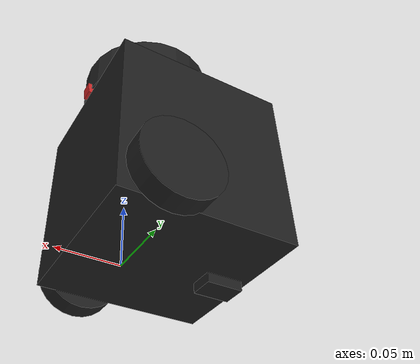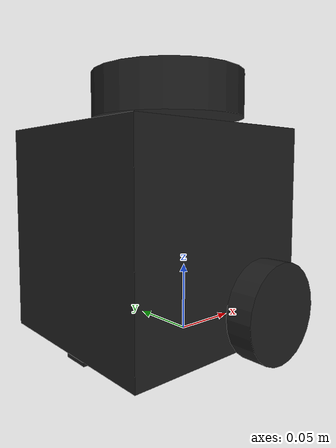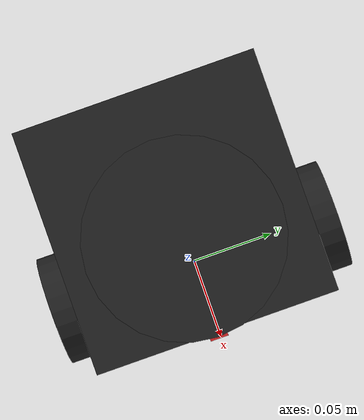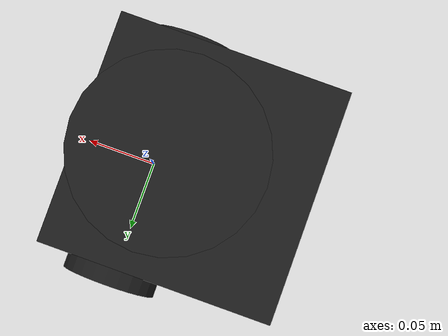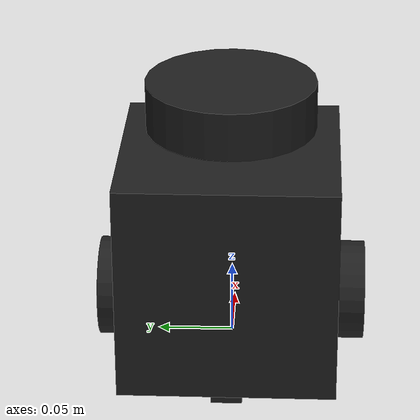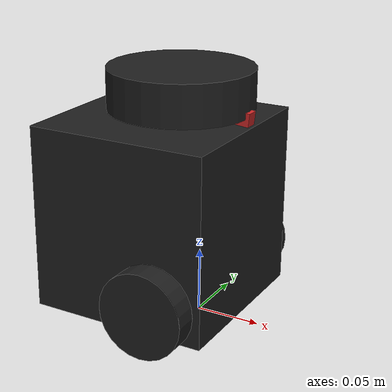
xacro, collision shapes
<?xml version="1.0" ?>
<robot name="turtlebot3_burger" xmlns:xacro="http://ros.org/wiki/xacro">
  <xacro:include filename="$(find turtlebot3_description)/urdf/common_properties.xacro"/>
  <xacro:include filename="$(find turtlebot3_description)/urdf/turtlebot3_burger.gazebo.xacro"/>

  <link name="base_footprint"/>

  <joint name="base_joint" type="fixed">
    <parent link="base_footprint"/>
    <child link="base_link"/>
    <origin xyz="0.0 0.0 0.010" rpy="0 0 0"/>
  </joint>

  <link name="base_link">
    <visual>
      <origin xyz="-0.032 0 0.0" rpy="0 0 0"/>
      <geometry>
        <mesh filename="package://turtlebot3_description/meshes/bases/burger_base.stl" scale="0.001 0.001 0.001"/>
      </geometry>
      <material name="light_black"/>
    </visual>

    <collision>
      <origin xyz="-0.032 0 0.070" rpy="0 0 0"/>
      <geometry>
        <box size="0.140 0.140 0.143"/>
      </geometry>
    </collision>

    <inertial>
      <origin xyz="0 0 0" rpy="0 0 0"/>
      <mass value="8.2573504e-01"/>
      <inertia ixx="2.2124416e-03" ixy="-1.2294101e-05" ixz="3.4938785e-05"
               iyy="2.1193702e-03" iyz="-5.0120904e-06"
               izz="2.0064271e-03" />
    </inertial>
  </link>

  <joint name="wheel_left_joint" type="continuous">
    <parent link="base_link"/>
    <child link="wheel_left_link"/>
    <origin xyz="0.0 0.08 0.023" rpy="-1.57 0 0"/>
    <axis xyz="0 0 1"/>
  </joint>

  <link name="wheel_left_link">
    <visual>
      <origin xyz="0 0 0" rpy="1.57 0 0"/>
      <geometry>
        <mesh filename="package://turtlebot3_description/meshes/wheels/left_tire.stl" scale="0.001 0.001 0.001"/>
      </geometry>
      <material name="dark"/>
    </visual>

    <collision>
      <origin xyz="0 0 0" rpy="0 0 0"/>
      <geometry>
        <cylinder length="0.018" radius="0.033"/>
      </geometry>
    </collision>

    <inertial>
      <origin xyz="0 0 0" />
      <mass value="2.8498940e-02" />
      <inertia ixx="1.1175580e-05" ixy="-4.2369783e-11" ixz="-5.9381719e-09"
               iyy="1.1192413e-05" iyz="-1.4400107e-11"
               izz="2.0712558e-05" />
      </inertial>
  </link>

  <joint name="wheel_right_joint" type="continuous">
    <parent link="base_link"/>
    <child link="wheel_right_link"/>
    <origin xyz="0.0 -0.080 0.023" rpy="-1.57 0 0"/>
    <axis xyz="0 0 1"/>
  </joint>

  <link name="wheel_right_link">
    <visual>
      <origin xyz="0 0 0" rpy="1.57 0 0"/>
      <geometry>
        <mesh filename="package://turtlebot3_description/meshes/wheels/right_tire.stl" scale="0.001 0.001 0.001"/>
      </geometry>
      <material name="dark"/>
    </visual>

    <collision>
      <origin xyz="0 0 0" rpy="0 0 0"/>
      <geometry>
        <cylinder length="0.018" radius="0.033"/>
      </geometry>
    </collision>

    <inertial>
      <origin xyz="0 0 0" />
      <mass value="2.8498940e-02" />
      <inertia ixx="1.1175580e-05" ixy="-4.2369783e-11" ixz="-5.9381719e-09"
               iyy="1.1192413e-05" iyz="-1.4400107e-11"
               izz="2.0712558e-05" />
      </inertial>
  </link>

  <joint name="caster_back_joint" type="fixed">
    <parent link="base_link"/>
    <child link="caster_back_link"/>
    <origin xyz="-0.081 0 -0.004" rpy="-1.57 0 0"/>
  </joint>

  <link name="caster_back_link">
    <collision>
      <origin xyz="0 0.001 0" rpy="0 0 0"/>
      <geometry>
        <box size="0.030 0.009 0.020"/>
      </geometry>
    </collision>

    <inertial>
      <origin xyz="0 0 0" />
      <mass value="0.005" />
      <inertia ixx="0.001" ixy="0.0" ixz="0.0"
               iyy="0.001" iyz="0.0"
               izz="0.001" />
    </inertial>
  </link>

  <joint name="imu_joint" type="fixed">
    <parent link="base_link"/>
    <child link="imu_link"/>
    <origin xyz="-0.032 0 0.068" rpy="0 0 0"/>
  </joint>

  <link name="imu_link"/>

  <joint name="scan_joint" type="fixed">
    <parent link="base_link"/>
    <child link="base_scan"/>
    <origin xyz="-0.032 0 0.172" rpy="0 0 0"/>
  </joint>

  <link name="base_scan">
    <visual>
      <origin xyz="0 0 0.0" rpy="0 0 0"/>
      <geometry>
        <mesh filename="package://turtlebot3_description/meshes/sensors/lds.stl" scale="0.001 0.001 0.001"/>
      </geometry>
      <material name="dark"/>
    </visual>

    <collision>
      <origin xyz="0.015 0 -0.0065" rpy="0 0 0"/>
      <geometry>
        <cylinder length="0.0315" radius="0.055"/>
      </geometry>
    </collision>

    <inertial>
      <mass value="0.114" />
      <origin xyz="0 0 0" />
      <inertia ixx="0.001" ixy="0.0" ixz="0.0"
               iyy="0.001" iyz="0.0"
               izz="0.001" />
    </inertial>
  </link>

    <!-- camera -->
    <joint name = "camera_joint" type = "fixed">
      <axis xyz = "0 1 0"/>
        <origin xyz = "0.035 0.0 0.15" rpy= "0 0.1 0"/>
        <parent link = "base_link"/>
        <child link = "camera_link"/>
  </joint>

  <link name = "camera_link">
    <collision>
      <origin xyz = "0 0 0" rpy = "0 0 0"/>
        <geometry>
          <box size = "${camera_link} ${camera_link} ${camera_link}"/>
        </geometry>
    </collision>

    <visual>
      <origin xyz = "0 0 0" rpy = "0 0 0"/>
        <geometry>
          <box size = "${camera_link} ${camera_link} ${camera_link}"/>
        </geometry>
        <material name = "red"/>
    </visual>

    <inertial>
      <mass value="1e-5" />
      <origin xyz = "0 0 0" rpy = "0 0 0"/>
      <inertia ixx = "1e-6" ixy = "0" ixz = "0" iyy = "1e-6" iyz = "0" izz = "1e-6" />
    </inertial>
  </link>

</robot>

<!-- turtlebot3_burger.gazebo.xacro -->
<robot name="turtlebot3_burger_sim" xmlns:xacro="http://ros.org/wiki/xacro">
  <xacro:arg name="laser_visual" default="false"/>
  <xacro:arg name="imu_visual"   default="false"/>

  <gazebo reference="base_link">
    <material>Gazebo/DarkGrey</material>
  </gazebo>

  <gazebo reference="wheel_left_link">
    <mu1>0.1</mu1>
    <mu2>0.1</mu2>
    <kp>500000.0</kp>
    <kd>10.0</kd>
    <minDepth>0.001</minDepth>
    <maxVel>0.1</maxVel>
    <fdir1>1 0 0</fdir1>
    <material>Gazebo/FlatBlack</material>
  </gazebo>

  <gazebo reference="wheel_right_link">
    <mu1>0.1</mu1>
    <mu2>0.1</mu2>
    <kp>500000.0</kp>
    <kd>10.0</kd>
    <minDepth>0.001</minDepth>
    <maxVel>0.1</maxVel>
    <fdir1>1 0 0</fdir1>
    <material>Gazebo/FlatBlack</material>
  </gazebo>

  <gazebo reference="caster_back_link">
    <mu1>0.1</mu1>
    <mu2>0.1</mu2>
    <kp>1000000.0</kp>
    <kd>100.0</kd>
    <minDepth>0.001</minDepth>
    <maxVel>1.0</maxVel>
    <material>Gazebo/FlatBlack</material>
  </gazebo>

  <gazebo reference="imu_link">
    <sensor type="imu" name="imu">
      <always_on>true</always_on>
      <visualize>$(arg imu_visual)</visualize>
    </sensor>
    <material>Gazebo/FlatBlack</material>
  </gazebo>

  <gazebo>
    <plugin name="turtlebot3_burger_controller" filename="libgazebo_ros_diff_drive.so">
      <commandTopic>cmd_vel</commandTopic>
      <odometryTopic>odom</odometryTopic>
      <odometryFrame>odom</odometryFrame>
      <odometrySource>world</odometrySource>
      <publishOdomTF>true</publishOdomTF>
      <robotBaseFrame>base_footprint</robotBaseFrame>
      <publishWheelTF>false</publishWheelTF>
      <publishTf>true</publishTf>
      <publishWheelJointState>true</publishWheelJointState>
      <legacyMode>false</legacyMode>
      <updateRate>30</updateRate>
      <leftJoint>wheel_left_joint</leftJoint>
      <rightJoint>wheel_right_joint</rightJoint>
      <wheelSeparation>0.160</wheelSeparation>
      <wheelDiameter>0.066</wheelDiameter>
      <wheelAcceleration>1</wheelAcceleration>
      <wheelTorque>10</wheelTorque>
      <rosDebugLevel>na</rosDebugLevel>
    </plugin>
  </gazebo>

  <gazebo>
    <plugin name="imu_plugin" filename="libgazebo_ros_imu.so">
      <alwaysOn>true</alwaysOn>
      <bodyName>imu_link</bodyName>
      <frameName>imu_link</frameName>
      <topicName>imu</topicName>
      <serviceName>imu_service</serviceName>
      <gaussianNoise>0.0</gaussianNoise>
      <updateRate>200</updateRate>
      <imu>
        <noise>
          <type>gaussian</type>
          <rate>
            <mean>0.0</mean>
            <stddev>2e-4</stddev>
            <bias_mean>0.0000075</bias_mean>
            <bias_stddev>0.0000008</bias_stddev>
          </rate>
          <accel>
            <mean>0.0</mean>
            <stddev>1.7e-2</stddev>
            <bias_mean>0.1</bias_mean>
            <bias_stddev>0.001</bias_stddev>
          </accel>
        </noise>
      </imu>
    </plugin>
  </gazebo>

  <gazebo reference="base_scan">
    <material>Gazebo/FlatBlack</material>
    <sensor type="ray" name="lds_lfcd_sensor">
      <pose>0 0 0 0 0 0</pose>
      <visualize>$(arg laser_visual)</visualize>
      <update_rate>5</update_rate>
      <ray>
        <scan>
          <horizontal>
            <samples>360</samples>
            <resolution>1</resolution>
            <min_angle>0.0</min_angle>
            <max_angle>6.28319</max_angle>
          </horizontal>
        </scan>
        <range>
          <min>0.120</min>
          <max>3.5</max>
          <resolution>0.015</resolution>
        </range>
        <noise>
          <type>gaussian</type>
          <mean>0.0</mean>
          <stddev>0.01</stddev>
        </noise>
      </ray>
      <plugin name="gazebo_ros_lds_lfcd_controller" filename="libgazebo_ros_laser.so">
        <topicName>scan</topicName>
        <frameName>base_scan</frameName>
      </plugin>
    </sensor>
  </gazebo>

  <xacro:property name = "camera_link" value = "0.01"/>

  <gazebo>
    <plugin name = "differential_drive_controller" filename = "libdiffdrive_plugin.so">
    </plugin>
  </gazebo>

  <gazebo reference="camera_link">
    <material>Gazebo/Red</material>
    <sensor type="camera" name="camera_sensor">
      <update_rate>30.0</update_rate>
      <visualize>true</visualize>

      <camera name="camera_camera">
        <horizontal_fov>1.74533</horizontal_fov>
        <image>
          <width>640</width>
          <height>480</height>
          <format>R8G8B8</format>
        </image>
        <clip>
          <near>0.02</near>
          <far>300</far>
        </clip>
        <noise>
          <type>gaussian</type>
          <mean>0.0</mean>
          <stddev>0.007</stddev>
        </noise>
      </camera>
      <plugin name="camera_controller" filename="libgazebo_ros_camera.so">
        <alwaysOn>true</alwaysOn>
        <updateRate>30.0</updateRate>
        <cameraName>turtlebot3_burger/camera_camera</cameraName>
        <imageTopicName>image</imageTopicName>
        <cameraInfoTopicName>camera_info</cameraInfoTopicName>
        <frameName>camera_link</frameName>
        <hackBaseline>0</hackBaseline>
        <distortionK1>0.0</distortionK1>
        <distortionK2>0.0</distortionK2>
        <distortionK3>0.0</distortionK3>
        <distortionT1>0.0</distortionT1>
        <distortionT2>0.0</distortionT2>
      </plugin>
    </sensor>
  </gazebo>

</robot>
